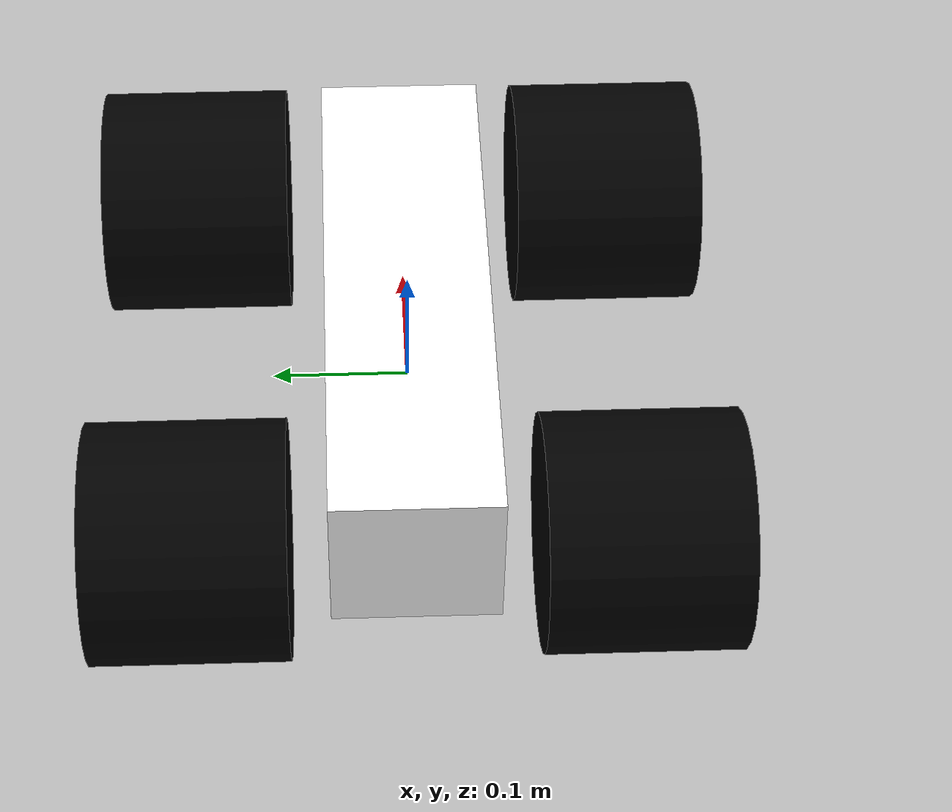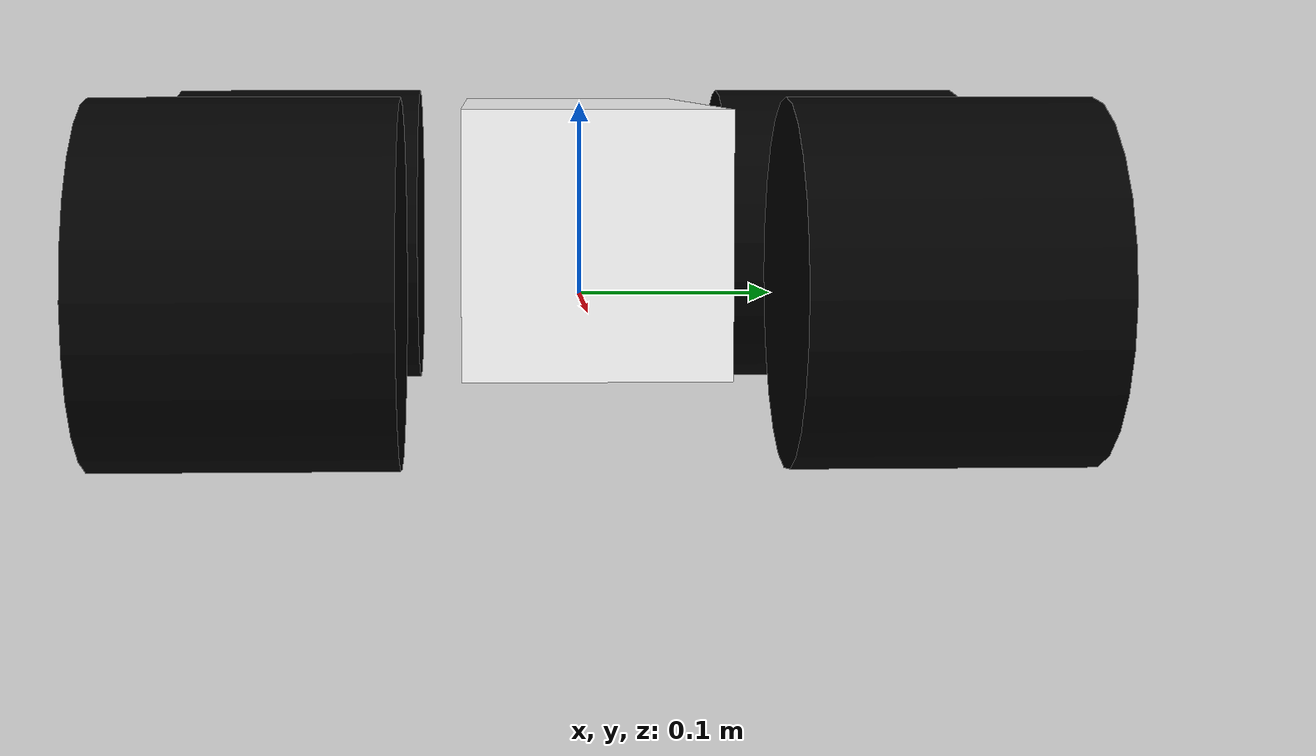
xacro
<?xml version="1.0"?>

<robot name="spartan" xmlns:xacro="http://www.ros.org/wiki/xacro">

  <xacro:arg name="robot_name" default="spartan"/>
  <xacro:arg name="prefix" default=""/>
  <xacro:arg name="use_gazebo" default="false"/>

  <xacro:property name="base_length" value="0.420"/>
  <xacro:property name="base_width"  value="0.120"/>
  <xacro:property name="base_height" value="0.120"/>
  <xacro:property name="base_mass"   value="5.0"/>

  <xacro:property name="wheel_radius" value="0.085"/>
  <xacro:property name="wheel_width"  value="0.140"/>

  <xacro:property name="wheel_mass"   value="0.20"/>

  <xacro:property name="caster_radius" value="0.015"/>
  <xacro:property name="caster_mass"   value="0.05"/>

  <xacro:include filename="$(find spartan_description)/urdf/mech/wheel.urdf.xacro"/>
  <xacro:include filename="$(find spartan_description)/urdf/mech/base.urdf.xacro"/>

  <xacro:include filename="$(find spartan_description)/urdf/sensors/gps.urdf.xacro"/>

  <xacro:base
    prefix="$(arg prefix)"
    base_name="base"
    parent="base_footprint"
    xyz_offset="0 0 0"
    rpy_offset="0 0 0"
    base_length="${base_length}"
    base_width="${base_width}"
    base_height="${base_height}"
    base_mass="${base_mass}"/>
  <!-- Front-left wheel -->

  <xacro:wheel
    prefix="$(arg prefix)"
    wheel_name="front_left_wheel"
    parent="base_link"
    xyz_offset="0.170 0.1575 0.020"
    rpy_offset="0 0 0"
    axis="0 1 0"
    wheel_radius="${wheel_radius}"
    wheel_width="${wheel_width}"
    wheel_mass="${wheel_mass}"/>
  <!-- Rear-right wheel -->

  <xacro:wheel
    prefix="$(arg prefix)"
    wheel_name="rear_right_wheel"
    parent="base_link"
    xyz_offset="-0.170 -0.1575 0.020"
    rpy_offset="0 0 0"
    axis="0 1 0"
    wheel_radius="${wheel_radius}"
    wheel_width="${wheel_width}"
    wheel_mass="${wheel_mass}"/>
  <!-- Rear-left wheel -->

  <xacro:wheel
    prefix="$(arg prefix)"
    wheel_name="rear_left_wheel"
    parent="base_link"
    xyz_offset="0.170 -0.1575 0.020"
    rpy_offset="0 0 0"
    axis="0 1 0"
    wheel_radius="${wheel_radius}"
    wheel_width="${wheel_width}"
    wheel_mass="${wheel_mass}"/>
  <!-- Front-right wheel -->

  <xacro:wheel
    prefix="$(arg prefix)"
    wheel_name="front_right_wheel"
    parent="base_link"
    xyz_offset="-0.170 0.1575 0.020"
    rpy_offset="0 0 0"
    axis="0 1 0"
    wheel_radius="${wheel_radius}"
    wheel_width="${wheel_width}"
    wheel_mass="${wheel_mass}"/>

  <xacro:gps
    prefix="$(arg prefix)"
    gps_name="gps"
    parent="base_link"
    xyz_offset="0 0 0.055"
    rpy_offset="0 0 0"/>
</robot>

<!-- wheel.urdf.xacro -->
<robot xmlns:xacro="http://www.ros.org/wiki/xacro">

  <xacro:macro name="wheel" params="
    prefix:=''
    wheel_name:='left_wheel'
    parent:='base_link'
    xyz_offset:='0 0.0925 0.020'
    rpy_offset:='0 0 0'
    axis:='0 1 0'
    mesh_file:='package://benzene_description/meshes/v3/visual/wheel_link.stl'
    mesh_scale:='0.001 0.001 0.001'
    mesh_xyz_offset:='0 0 0'
    mesh_rpy_offset:='0 0 ${pi/2}'
    wheel_radius:=0.035
    wheel_width:=0.03
    wheel_mass:=0.5
    material_name:='black'
    material_color:='0 0 0 1'
    damping:=0.05
    friction:=0.05
  ">

    <joint name="${prefix}${wheel_name}_joint" type="continuous">
      <parent link="${prefix}${parent}"/>
      <child link="${prefix}${wheel_name}_link"/>
      <origin xyz="${xyz_offset}" rpy="${rpy_offset}"/>
      <axis xyz="${axis}"/>
      <dynamics damping="${damping}" friction="${friction}"/>
    </joint>

    <link name="${prefix}${wheel_name}_link">
      <visual>
        <origin xyz="0 0 0" rpy="-${pi/2} 0 0"/>
        <geometry>
          <cylinder radius="${wheel_radius}" length="${wheel_width}"/>
        </geometry>
        <material name="${material_name}">
          <color rgba="${material_color}"/>
        </material>
      </visual>

      <collision>
        <origin xyz="0 0 0" rpy="-${pi/2} 0 0"/>
        <geometry>
          <cylinder radius="${wheel_radius}" length="${wheel_width}"/>
        </geometry>
      </collision>
      <inertial>
        <origin xyz="0 0 0" rpy="0 0 0"/>
        <mass value="${wheel_mass}"/>
        <inertia
          ixx="${(1.0/12.0) * wheel_mass * (3*wheel_radius*wheel_radius + wheel_width*wheel_width)}"
          ixy="0.0"
          ixz="0.0"
          iyy="${(1.0/12.0) * wheel_mass * (3*wheel_radius*wheel_radius + wheel_width*wheel_width)}"
          iyz="0.0"
          izz="${0.5 * wheel_mass * wheel_radius*wheel_radius}"/>
      </inertial>
    </link>

    <gazebo reference="${prefix}${wheel_name}_link">
      <material>Gazebo/Black</material>
    </gazebo>

  </xacro:macro>

</robot>

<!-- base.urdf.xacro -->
<robot xmlns:xacro="http://www.ros.org/wiki/xacro">

  <xacro:macro name="base" params="
    prefix:=''
    base_name:='base'
    parent:='base_footprint'
    xyz_offset:='0 0 0'
    rpy_offset:='0 0 0'
    mesh_file:='package://benzene_description/meshes/v3/visual/base_link.stl'
    mesh_scale:='0.001 0.001 0.001'
    mesh_xyz_offset:='0 0 0'
    mesh_rpy_offset:='1.5708 0 ${pi/2}'
    base_length:=0.3
    base_width:=0.2
    base_height:=0.08
    base_mass:=5.0
    collision_xyz_offset:='0 0 0.04'
    collision_rpy_offset:='0 0 0'
    material_name:='white'
    material_color:='1 1 1 1'
  ">

    <link name="${prefix}${parent}"/>
    <joint name="${prefix}${base_name}_footprint_joint" type="fixed">
      <parent link="${prefix}${parent}"/>
      <child link="${prefix}${base_name}_link"/>
      <origin xyz="${xyz_offset}" rpy="${rpy_offset}"/>
    </joint>

    <link name="${prefix}${base_name}_link">
      <visual>
        <origin xyz="${collision_xyz_offset}" rpy="${collision_rpy_offset}"/>
        <geometry>
          <box size="${base_length} ${base_width} ${base_height}"/>
        </geometry>
        <material name="${material_name}">
          <color rgba="${material_color}"/>
        </material>
      </visual>

      <collision>
        <origin xyz="${collision_xyz_offset}" rpy="${collision_rpy_offset}"/>
        <geometry>
          <box size="${base_length} ${base_width} ${base_height}"/>
        </geometry>
      </collision>
      <inertial>
        <origin xyz="0 0 0" rpy="0 0 0"/>
        <mass value="${base_mass}"/>
        <inertia
          ixx="${(1.0/12.0) * base_mass * (base_width*base_width + base_height*base_height)}"
          ixy="0.0"
          ixz="0.0"
          iyy="${(1.0/12.0) * base_mass * (base_length*base_length + base_height*base_height)}"
          iyz="0.0"
          izz="${(1.0/12.0) * base_mass * (base_length*base_length + base_width*base_width)}"/>
      </inertial>
    </link>

  </xacro:macro>

</robot>

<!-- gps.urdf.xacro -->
<robot xmlns:xacro="http://www.ros.org/wiki/xacro">

  <xacro:macro name="gps" params="
    prefix:=''
    gps_name:='gps'
    parent:='base_link'
    xyz_offset:='0 0 0.08'
    rpy_offset:='0 0 0'
    gps_length:=0.04
    gps_width:=0.04
    gps_height:=0.015
    gps_mass:=0.05
    material_name:='blue'
    material_color:='0 0 1 1'
  ">

    <!-- GPS mounting joint -->
    <joint name="${prefix}${gps_name}_joint" type="fixed">
      <parent link="${prefix}${parent}"/>
      <child link="${prefix}${gps_name}_link"/>
      <origin xyz="${xyz_offset}" rpy="${rpy_offset}"/>
    </joint>

    <!-- GPS link -->
    <link name="${prefix}${gps_name}_link">

      <!-- Visual geometry -->
      <visual>
        <origin xyz="0 0 0" rpy="0 0 0"/>
        <geometry>
          <box size="${gps_length} ${gps_width} ${gps_height}"/>
        </geometry>
        <material name="${material_name}">
          <color rgba="${material_color}"/>
        </material>
      </visual>

      <!-- Collision geometry -->
      <collision>
        <origin xyz="0 0 0" rpy="0 0 0"/>
        <geometry>
          <box size="${gps_length} ${gps_width} ${gps_height}"/>
        </geometry>
      </collision>

      <!-- Inertial properties -->
      <inertial>
        <origin xyz="0 0 0" rpy="0 0 0"/>
        <mass value="${gps_mass}"/>
        <inertia
          ixx="${(1.0/12.0) * gps_mass * (gps_width*gps_width + gps_height*gps_height)}"
          ixy="0.0"
          ixz="0.0"
          iyy="${(1.0/12.0) * gps_mass * (gps_length*gps_length + gps_height*gps_height)}"
          iyz="0.0"
          izz="${(1.0/12.0) * gps_mass * (gps_length*gps_length + gps_width*gps_width)}"/>
      </inertial>

    </link>

    <!-- Gazebo material -->
    <gazebo reference="${prefix}${gps_name}_link">
      <material>Gazebo/Blue</material>
    </gazebo>

  </xacro:macro>

</robot>
